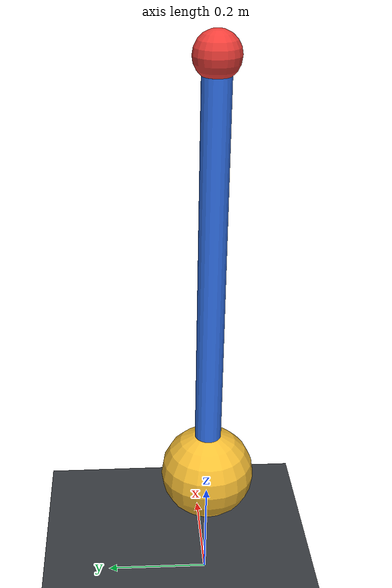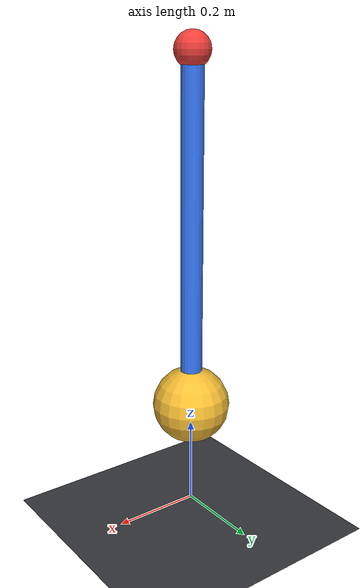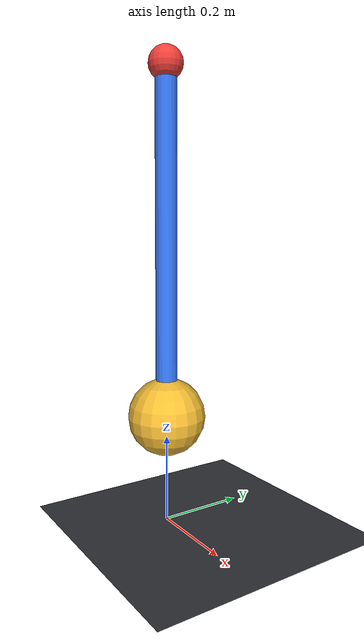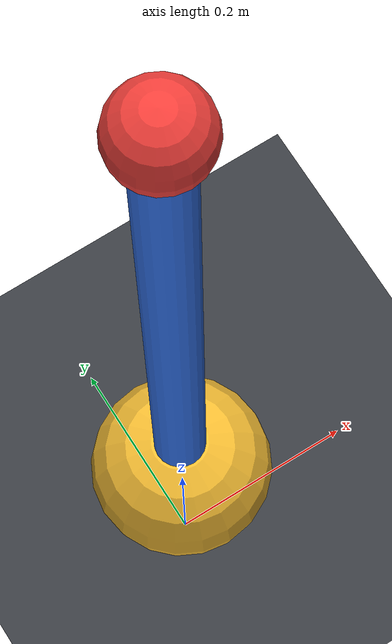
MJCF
<mujoco model="stage2_single_pendulum">
  <compiler angle="degree"/>
  <option timestep="0.002" gravity="0 0 -9.81"/>

  <asset>
    <texture name="grid" type="2d" builtin="checker" rgb1="0.16 0.17 0.19" rgb2="0.27 0.29 0.31" width="300" height="300"/>
    <material name="grid" texture="grid" texrepeat="4 4" reflectance="0.15"/>
  </asset>

  <worldbody>
    <light name="key" pos="0 -3 4" dir="0 1 -1"/>
    <camera name="demo" pos="0 -2.5 1.1" xyaxes="1 0 0 0 0 1"/>
    <geom name="floor" type="plane" size="1.5 1.5 0.02" material="grid"/>

    <body name="pendulum" pos="0 0 1.05">
      <joint name="hinge" type="hinge" axis="0 1 0" damping="0.08"/>
      <geom name="pivot" type="sphere" size="0.04" rgba="0.93 0.24 0.22 1"/>
      <geom name="arm" type="capsule" fromto="0 0 0 0 0 -0.72" size="0.025" mass="0.25" rgba="0.20 0.46 0.95 1"/>
      <body name="bob" pos="0 0 -0.80">
        <geom name="bob_geom" type="sphere" size="0.09" mass="0.75" rgba="0.96 0.74 0.20 1"/>
      </body>
    </body>
  </worldbody>

  <actuator>
    <motor name="hinge_motor" joint="hinge" gear="1.0" ctrllimited="true" ctrlrange="-4 4"/>
  </actuator>
</mujoco>
